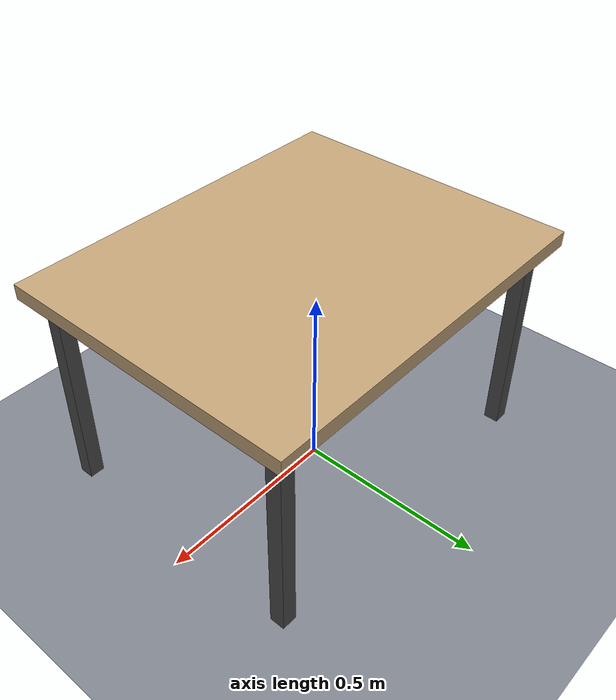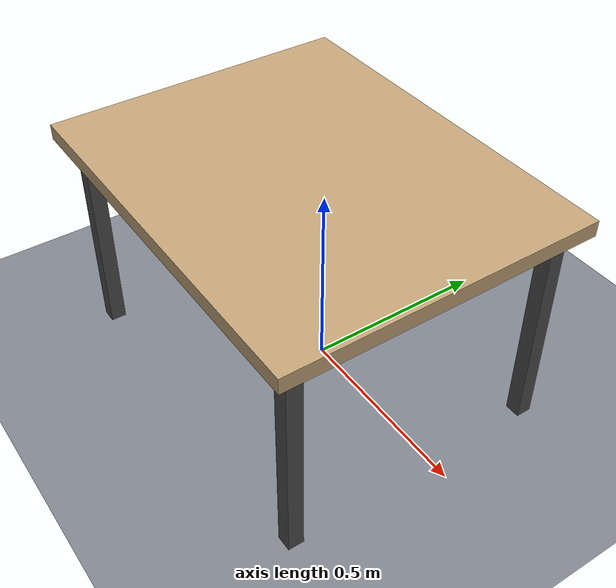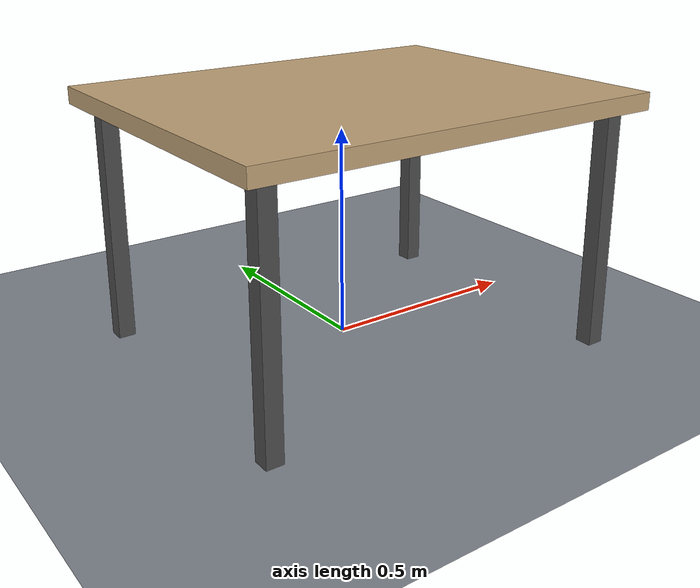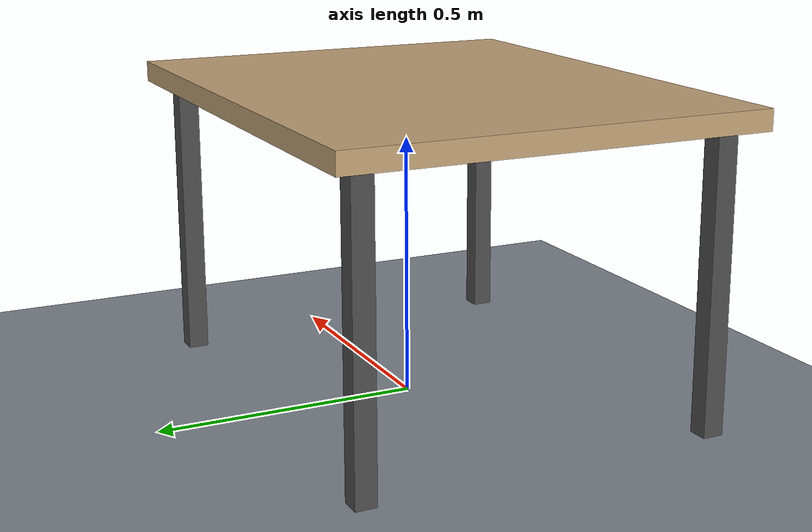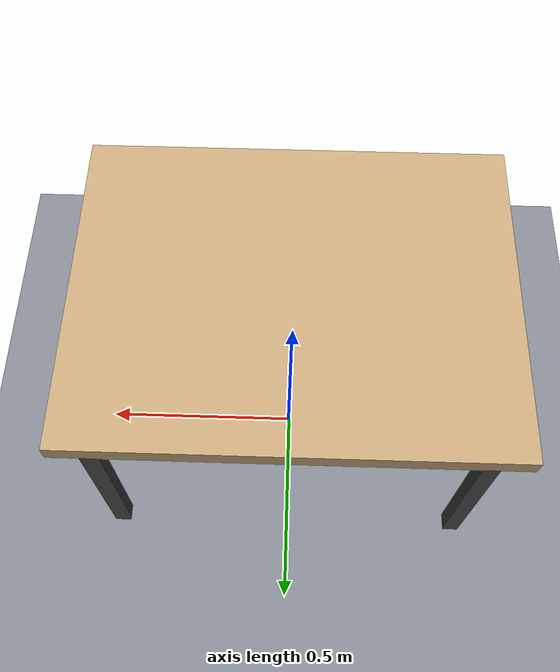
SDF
<?xml version="1.0"?>
<sdf version="1.6">
  <world name="so_arm_fk_learning">
    <!-- This is an ideal kinematics lab: no gravity or world contact forces. -->
    <gravity>0 0 0</gravity>
    <physics name="fk_lab_physics" type="ode">
      <max_step_size>0.001</max_step_size>
      <real_time_factor>1.0</real_time_factor>
      <real_time_update_rate>1000</real_time_update_rate>
      <ode><solver><type>quick</type><iters>100</iters><sor>1.3</sor></solver></ode>
    </physics>
    <scene>
      <ambient>0.65 0.65 0.65 1</ambient>
      <background>0.85 0.9 0.95 1</background>
      <shadows>true</shadows>
    </scene>
    <gui fullscreen="0">
      <camera name="fk_learning_camera">
        <pose>0.70 -0.90 1.15 0 0.40 2.30</pose>
        <view_controller>orbit</view_controller>
      </camera>
    </gui>
    <light name="sun" type="directional">
      <cast_shadows>true</cast_shadows>
      <pose>0 0 10 0 0 0</pose>
      <diffuse>0.9 0.9 0.9 1</diffuse>
      <specular>0.2 0.2 0.2 1</specular>
      <attenuation><range>1000</range><constant>0.9</constant><linear>0.01</linear><quadratic>0.001</quadratic></attenuation>
      <direction>-0.5 0.3 -1</direction>
    </light>
    <model name="lab_ground">
      <static>true</static>
      <link name="ground">
        <visual name="ground_visual">
          <geometry><plane><normal>0 0 1</normal><size>10 10</size></plane></geometry>
          <material><ambient>0.48 0.5 0.54 1</ambient><diffuse>0.5 0.52 0.56 1</diffuse></material>
        </visual>
      </link>
    </model>
    <model name="lab_table">
      <static>true</static>
      <link name="table">
        <!-- Visual reference only: arbitrary URDF poses may pass through it. -->
        <visual name="tabletop_visual">
          <pose>0 -0.05 0.58 0 0 0</pose>
          <geometry><box><size>1.0 0.8 0.04</size></box></geometry>
          <material><ambient>0.64 0.53 0.38 1</ambient><diffuse>0.76 0.64 0.47 1</diffuse></material>
        </visual>
        <visual name="leg_front_left">
          <pose>0.44 -0.39 0.28 0 0 0</pose>
          <geometry><box><size>0.04 0.04 0.56</size></box></geometry>
          <material><ambient>0.25 0.25 0.25 1</ambient><diffuse>0.3 0.3 0.3 1</diffuse></material>
        </visual>
        <visual name="leg_front_right">
          <pose>-0.44 -0.39 0.28 0 0 0</pose>
          <geometry><box><size>0.04 0.04 0.56</size></box></geometry>
          <material><ambient>0.25 0.25 0.25 1</ambient><diffuse>0.3 0.3 0.3 1</diffuse></material>
        </visual>
        <visual name="leg_back_left">
          <pose>0.44 0.29 0.28 0 0 0</pose>
          <geometry><box><size>0.04 0.04 0.56</size></box></geometry>
          <material><ambient>0.25 0.25 0.25 1</ambient><diffuse>0.3 0.3 0.3 1</diffuse></material>
        </visual>
        <visual name="leg_back_right">
          <pose>-0.44 0.29 0.28 0 0 0</pose>
          <geometry><box><size>0.04 0.04 0.56</size></box></geometry>
          <material><ambient>0.25 0.25 0.25 1</ambient><diffuse>0.3 0.3 0.3 1</diffuse></material>
        </visual>
      </link>
    </model>
    <plugin name="gazebo_ros_state" filename="libgazebo_ros_state.so">
      <ros><namespace>/gazebo</namespace></ros>
      <update_rate>30</update_rate>
    </plugin>
  </world>
</sdf>
